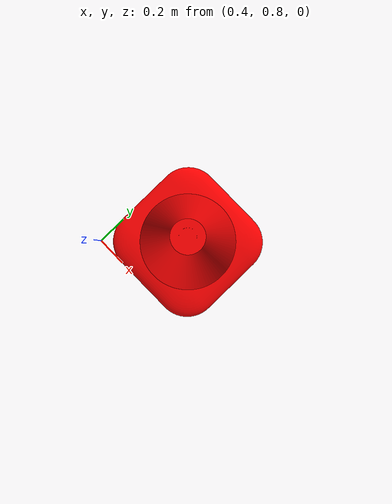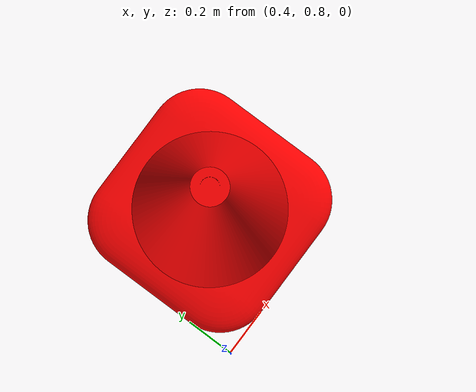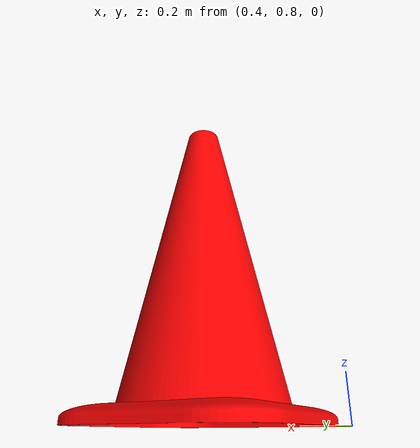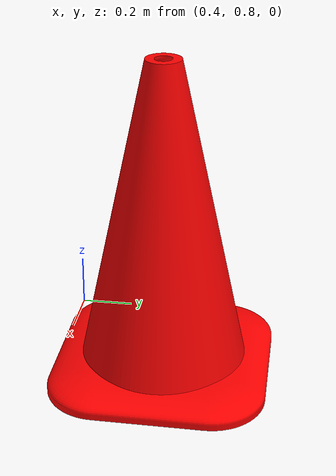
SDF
<?xml version="1.0"?>
<sdf version="1.9">
  <model name="football_cone">
    <static>true</static>
    <link name="link">
      <visual name="visual">
        <geometry>
          <mesh>
            <uri>model://cone_4/meshes/football_cone.stl</uri>
            <scale>0.4 0.4 0.4</scale> <!--  0.005 is too small 0.05 is still too large get the best scale and use it here -->
          </mesh>
        </geometry>
        <material>
          <ambient>1 0 0 1</ambient>
          <diffuse>1 0 0 1</diffuse>
        </material>
      </visual>
      <collision name="collision">
        <geometry>
          <mesh>
            <uri>model://cone_4/meshes/football_cone.stl</uri>
          </mesh>
        </geometry>
      </collision>
    </link>
  </model>
</sdf>
